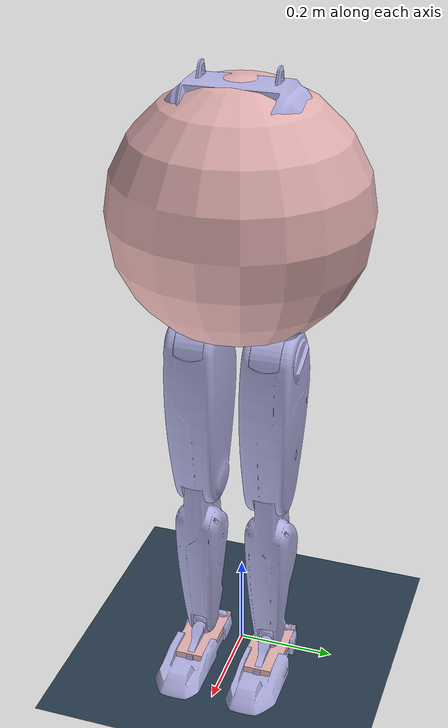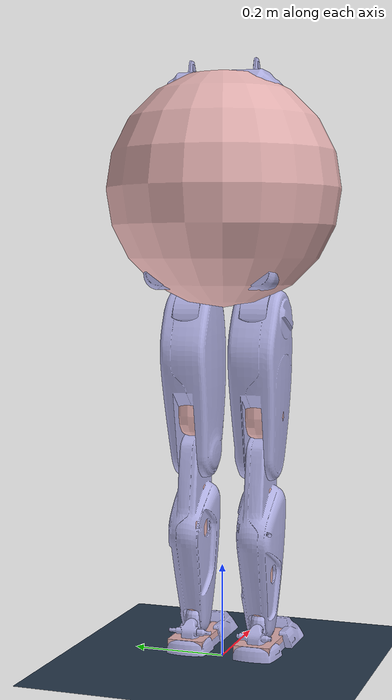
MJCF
<mujoco model="zq01">
  <compiler angle="radian" meshdir="../meshes/" eulerseq="xyz"/>
  <option timestep='0.002' iterations='50' solver='PGS' gravity='0 0 -9.81'>
    <flag sensornoise="enable" frictionloss="enable"/>
  </option>
  <size njmax="500" nconmax="100" />
  <visual>
    <quality shadowsize='4096'/>
    <map znear='0.05'/>
  </visual>
  <default>
    <joint limited='true'/>
    <motor ctrllimited='true'/>
    <geom  condim='4' contype="1" conaffinity="15" solref='0.001 2' friction='1.0 0.2 0.2'/>
    <equality solref='0.001 2'/>
    <default class='visualgeom'>
      <geom material='visual' condim='1' contype='0' conaffinity='0'/>
    </default>
    <default class='collisiongeom'>
      <geom material='visual2' condim='4' contype="1" conaffinity="15" solref='0.001 2' friction='1.0 0.2 0.2'/>
    </default>
  </default>

  <asset>
    <texture type="skybox" builtin="gradient" rgb1="0.3 0.5 0.7" rgb2="0 0 0" width="512" height="512"/>
    <texture name="texplane" type="2d" builtin="checker" rgb1=".2 .3 .4" rgb2=".1 0.15 0.2"
        width="512" height="512" mark="cross" markrgb=".8 .8 .8"/>
    <texture name="texplane2" type="2d" builtin="checker" rgb1="1 0.3137 0.1843" rgb2="0.0 0.30196 0.38039"
        width="512" height="512" mark="cross" markrgb=".8 .8 .8"/>
    <material name="matplane" reflectance="0." texture="texplane" texrepeat="1 1" texuniform="true"/>
    <material name="matplane2" reflectance="0.1" texture="texplane2" texrepeat="1 1" texuniform="true"/>

    <material name='obstacle'  rgba='0.9 0.6 0.2 1'/>
    <material name='visual'  rgba='0.7 0.7 0.9 1'/>
    <material name='visual2'  rgba='0.9 0.7 0.7 1'/>

    <mesh name="base" file="base.STL"/>
    <mesh name="Z1" file="Z1.STL"/>
    <mesh name="Z2" file="Z2.STL"/>
    <mesh name="Z3" file="Z3.STL"/>
    <mesh name="Z4" file="Z4.STL"/>
    <mesh name="Z5" file="Z5.STL"/>
    <mesh name="Z6" file="Z6.STL"/>
    <mesh name="Y1" file="Y1.STL"/>
    <mesh name="Y2" file="Y2.STL"/>
    <mesh name="Y3" file="Y3.STL"/>
    <mesh name="Y4" file="Y4.STL"/>
    <mesh name="Y5" file="Y5.STL"/>
    <mesh name="Y6" file="Y6.STL"/>
    <hfield name='hf0' nrow='200' ncol='200' size="10 5 0.2 .1"/>
  </asset>
  <worldbody>
    <light directional="true" diffuse=".4 .4 .4" specular="0.1 0.1 0.1" pos="0 0 5.0" dir="0 0 -1" castshadow="false"/>
    <light directional="true" diffuse=".6 .6 .6" specular="0.2 0.2 0.2" pos="0 0 4" dir="0 0 -1"/>
    <geom name="ground" type="plane" size="0 0 1" pos="0 0 0" quat="1 0 0 0" material="matplane" condim="1" conaffinity="15"/>

    <body name="base" pos="0.0 0.0 0.855">
      <inertial pos="-0.02535033 0.0 0.13619966" euler="0 0 0" mass="10.0" diaginertia="0.339706 0.313980 0.132461" />
      <geom type="mesh" mesh="base" group="1" class="visualgeom"/>
      <geom type="sphere" pos="0.01 0 0.15" size="0.25" group="2" class="collisiongeom"/>
      <freejoint name="root"/>
      <site name='imu' size='0.01' pos='0.0 0 0.0'/>

  	    <body name="Y1" pos="0.03923 -0.075 0.003">
	      <inertial pos="0.0006345 -0.000356516 -0.00127834" euler="0 0 0" mass="1.528" diaginertia="0.00326661 0.00234181 0.00184271"/>
	      <joint name="JOINT_Y1" pos="0 0 0" axis="1 0 0" limited="true" range="-0.523 0.523"/>
	      <geom type="mesh" mesh="Y1" group="1" class="visualgeom" />
          <geom size="0.025 0.05" euler="0 1.5708 0" type="capsule" group="2" class="visualgeom"/>
	      <body name="Y2">
	        <inertial pos="-0.000248181 -0.00203672 -0.120063" euler="0 0 0" mass="1.8" diaginertia="0.00442548 0.0032523 0.00236817"/>
	        <joint name="JOINT_Y2" pos="0 0 0" axis="0 0 1" limited="true" range="-0.3 0.3"/>
	        <geom type="mesh" mesh="Y2" group="1" class="visualgeom" />
            <geom size="0.025 0.02" pos="0 0 -0.05" type="capsule" group="2" class="visualgeom"/>
	        <body name="Y3" pos="0 0 -0.129">
	          <inertial pos="-0.00178082 -0.000759898 -0.143454" euler="0 0 0" mass="3.941" diaginertia="0.0377724 0.0340818 0.0103262"/>
	          <joint name="JOINT_Y3" pos="0 0 0" axis="0 -1 0" limited="true" range="-1.204 1.204"/>
	          <geom type="mesh" mesh="Y3" group="1" class="visualgeom" />
              <geom size="0.05 0.09" pos="0 0 -0.12" type="capsule" group="2" class="collisiongeom"/>
	          <body name="Y4" pos="0 -0.00029 -0.3">
	            <inertial pos="-0.00870412 0.000249222 -0.175914" euler="0 0 0" mass="3.25252" diaginertia="0.0426071 0.0408423 0.00490166"/>
	            <joint name="JOINT_Y4" pos="0 0 0" axis="0 -1 0" limited="true" range="-2.268 0"/>
	            <geom type="mesh" mesh="Y4" group="1" class="visualgeom" />
                <geom size="0.025 0.125" pos="0 0 -0.2" type="capsule" group="2" class="collisiongeom"/>
                <body name="Y5" pos="0 0 -0.37">
                    <inertial pos="0 0 0" euler="0 0 0"  mass="0.158722" diaginertia="0.0000353 0.0000350 0.0000395"/>
                    <joint name="JOINT_Y5" pos="0 0 0" axis="0 -1 0" limited="true" range="-1.0 1.0"/>
	                <geom type="mesh" mesh="Y5" group="1" class="visualgeom" />
                    <geom size="0.025 0.01" pos="0 0 0" type="capsule" group="2" class="visualgeom"/>
	                <body name="Y6_foot" pos="0 0 0">
	                    <inertial pos="0.0274653 -0.00180832 -0.0348838" euler="0 0 0" mass="1.08451" diaginertia="0.00565074 0.00533615 0.000960103"/>
	                    <joint name="JOINT_Y6" pos="0 0 0" axis="1 0 0" limited="true" range="-0.6 0.6"/>
	                    <geom type="mesh" mesh="Y6" group="1" class="visualgeom" />
                        <geom type="box" size="0.08 0.04 0.015" pos="0.01 0 -0.04" euler="0 0 0" group="2" class="collisiongeom"/>
                    </body>
	            </body>
	          </body>
	        </body>
	      </body>
	    </body>
	    <body name="Z1" pos="0.03923 0.075 0.003">
	      <inertial pos="0.0006345 -0.000356516 -0.00127834" euler="0 0 0" mass="1.528" diaginertia="0.00326661 0.00234181 0.00184271"/>
	      <joint name="JOINT_Z1" pos="0 0 0" axis="1 0 0" limited="true" range="-0.523 0.523"/>
          <geom type="mesh" mesh="Z1" group="1" class="visualgeom" />
	      <geom size="0.025 0.05" euler="0 1.5708 0" type="capsule" group="2" class="visualgeom" />
	      <body name="Z2">
	        <inertial pos="0.000248181 0.00203672 -0.120063" euler="0 0 0" mass="1.805" diaginertia="0.00442548 0.0032523 0.00236817"/>
	        <joint name="JOINT_Z2" pos="0 0 0" axis="0 0 1" limited="true" range="-0.3 0.3"/>
	        <geom type="mesh" mesh="Z2" group="1" class="visualgeom" />
	        <geom size="0.025 0.02" pos="0 0 -0.05" type="capsule" group="2" class="visualgeom"/>
	        <body name="Z3" pos="0 0 -0.129">
	          <inertial pos="-0.00178082 0.000759898 -0.143454" euler="0 0 0" mass="3.941" diaginertia="0.0377724 0.0340818 0.0103262"/>
	          <joint name="JOINT_Z3" pos="0 0 0" axis="0 -1 0" limited="true" range="-1.204 1.204"/>
	          <geom type="mesh" mesh="Z3" group="1" class="visualgeom" />
              <geom size="0.05 0.09" pos="0 0 -0.12" type="capsule" group="2" class="collisiongeom"/>
	          <body name="Z4" pos="0 0.00029 -0.3">
	            <inertial pos="-0.00870412 -0.000263374 -0.175914" euler="0 0 0" mass="3.25252" diaginertia="0.0426071 0.0408423 0.00490165"/>
	            <joint name="JOINT_Z4" pos="0 0 0" axis="0 -1 0" limited="true" range="-2.268 0"/>
	            <geom size="0.025 0.125" pos="0 0 -0.2" type="capsule" group="2" class="collisiongeom"/>
	            <geom type="mesh" mesh="Z4" group="1" class="visualgeom" />
                <body name="Z5" pos="0 0 -0.37">
                    <inertial pos="0 0 0" euler="0 0 0"  mass="0.158722" diaginertia="0.0000353 0.0000350 0.0000395"/>
                    <joint name="JOINT_Z5" pos="0 0 0" axis="0 -1 0" limited="true" range="-1.0 1.0"/>
                    <geom size="0.025 0.01" pos="0 0 0" type="capsule" group="2" class="visualgeom"/>
                    <geom type="mesh" mesh="Z5" group="1" class="visualgeom" />
                    <body name="Z6_foot" pos="0 0 0">
                      <inertial pos="0.0274653 0.00180832 -0.0348838" euler="0 0 0" mass="1.08451" diaginertia="0.00565074 0.00533615 0.000960103"/>
                      <joint name="JOINT_Z6" pos="0 0 0" axis="1 0 0" limited="true" range="-0.6 0.6"/>
                      <geom type="mesh" mesh="Z6" group="1" class="visualgeom" />
                      <geom type="box" size="0.08 0.04 0.015" pos="0.01 0 -0.04" euler="0 0 0" group="2" class="collisiongeom"/>
                    </body>
	            </body>
	          </body>
	        </body>
	      </body>
	    </body>
      </body>
  </worldbody>
  <actuator>
    <motor name="JOINT_Y1" joint="JOINT_Y1" gear="1" ctrllimited="true" ctrlrange="-200 200"/>
    <motor name="JOINT_Y2" joint="JOINT_Y2" gear="1" ctrllimited="true" ctrlrange="-200 200"/>
    <motor name="JOINT_Y3" joint="JOINT_Y3" gear="1" ctrllimited="true" ctrlrange="-200 200"/>
    <motor name="JOINT_Y4" joint="JOINT_Y4" gear="1" ctrllimited="true" ctrlrange="-200 200"/>
    <motor name="JOINT_Y5" joint="JOINT_Y5" gear="1" ctrllimited="true" ctrlrange="-200 200"/>
    <motor name="JOINT_Y6" joint="JOINT_Y6" gear="1" ctrllimited="true" ctrlrange="-200 200"/>
    <motor name="JOINT_Z1" joint="JOINT_Z1" gear="1" ctrllimited="true" ctrlrange="-200 200"/>
    <motor name="JOINT_Z2" joint="JOINT_Z2" gear="1" ctrllimited="true" ctrlrange="-200 200"/>
    <motor name="JOINT_Z3" joint="JOINT_Z3" gear="1" ctrllimited="true" ctrlrange="-200 200"/>
    <motor name="JOINT_Z4" joint="JOINT_Z4" gear="1" ctrllimited="true" ctrlrange="-200 200"/>
    <motor name="JOINT_Z5" joint="JOINT_Z5" gear="1" ctrllimited="true" ctrlrange="-200 200"/>
    <motor name="JOINT_Z6" joint="JOINT_Z6" gear="1" ctrllimited="true" ctrlrange="-200 200"/>

  </actuator>
  <sensor>
      <framequat     name='orientation' objtype='site' noise='0.001' objname='imu'/>
      <framepos     name='position' objtype='site' noise='0.001' objname='imu'/>
      <gyro          name='angular-velocity'    site='imu' noise='0.005' cutoff='34.9'/>
      <velocimeter   name='linear-velocity'     site='imu' noise='0.001' cutoff='30'/>
      <accelerometer name='linear-acceleration' site='imu' noise='0.005' cutoff='157'/>
      <magnetometer  name='magnetometer'        site='imu'/>
  </sensor>
</mujoco>
